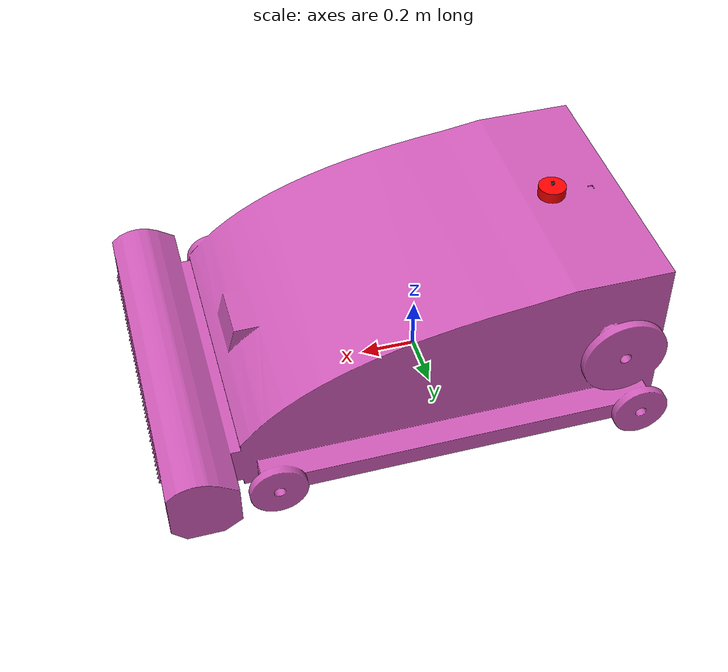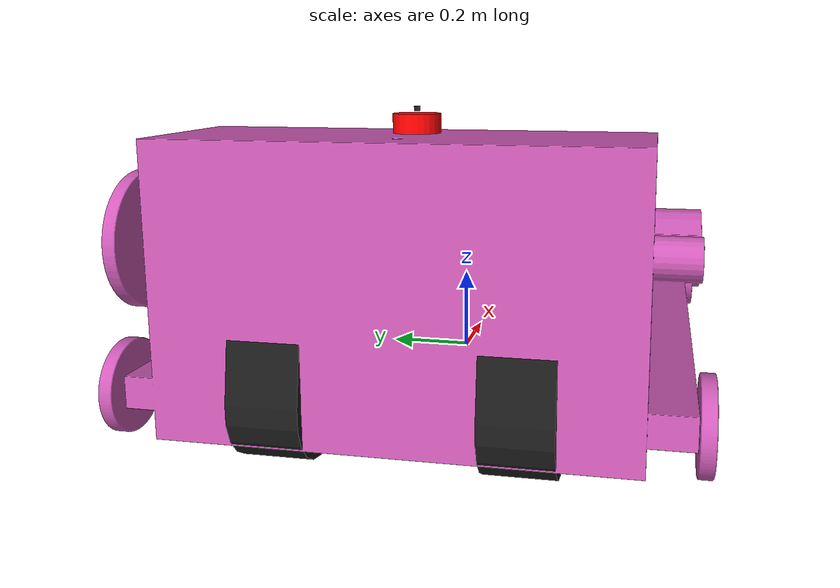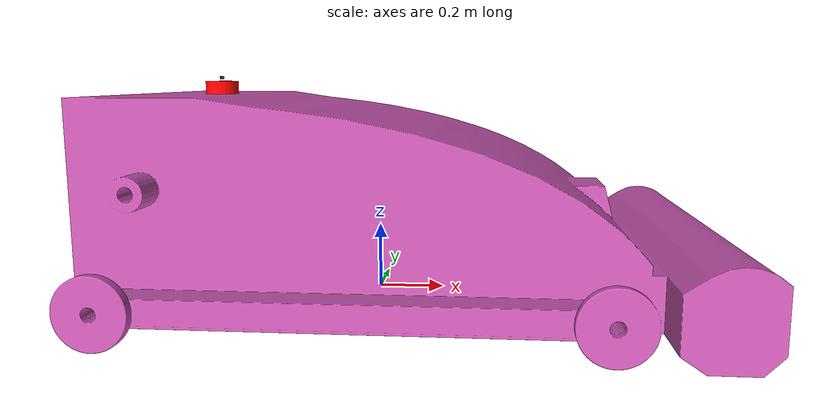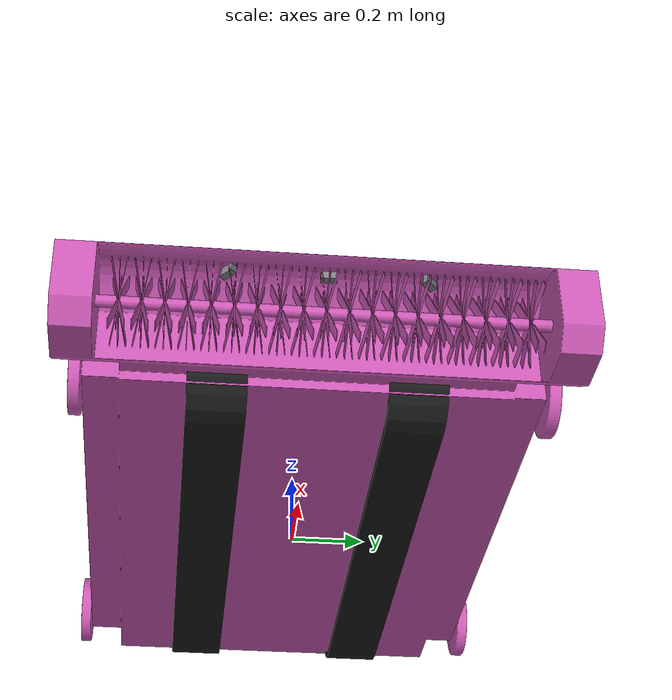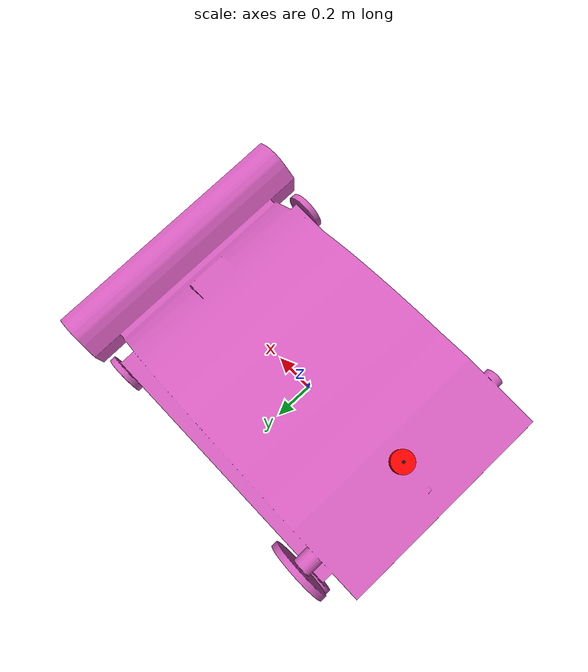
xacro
<?xml version="1.0"?>
<robot xmlns:xacro="http://ros.org/wiki/xacro" >

    <xacro:property name="base_mass" value="13.14"/>
    <xacro:property name="base_x" value="0.50"/>
    <xacro:property name="base_y" value="0.24"/>
    <xacro:property name="base_z" value="0.14"/>

    <xacro:property name="track_offset_y" value="0.25"/>
    <xacro:property name="drive_wheel_radius" value="0.05"/>
    <xacro:property name="drive_wheel_width" value="0.05"/>

    <link name="base_footprint"/>

    <joint name="base_joint" type="fixed">
        <parent link="base_footprint"/>
        <child link="base_link"/>
        <origin xyz="0 0 0" rpy="0 0 0"/>
    </joint>

    <link name="base_link">
        <visual name="base_link">
            <origin xyz="0 0 0"/>
            <geometry>
                <mesh filename="package://mower_bot_description/meshes/Car2.dae" />
            </geometry>
        </visual>
        <collision>
            <geometry>
                <mesh filename="package://mower_bot_description/meshes/Car2.dae" />
            </geometry>
        </collision>
        <inertial>
            <mass value="13.14"/>
            <inertia
                ixx="${(13.14/12) * (0.24*0.24 + 0.14*0.14)}" ixy="0" ixz="0"
                iyy="${(13.14/12) * (0.50*0.50 + 0.14*0.14)}" iyz="0"
                izz="${(13.14/12) * (0.50*0.50 + 0.24*0.24)}"
            />
        </inertial>
    </link>

    <xacro:macro name="drive_wheel" params="prefix location reflect_x reflect_y offset_x">
        <link name="${prefix}_${location}_wheel">
            <collision>
                <geometry>
                    <cylinder radius="${drive_wheel_radius}" length="${drive_wheel_width}"/>
                </geometry>
                <surface>
                    <friction>
                        <ode>
                            <mu>2.0</mu>
                            <mu2>0.5</mu2>
                            <fdir1>1 0 0</fdir1>
                            <slip1>0.0</slip1>
                            <slip2>0.0</slip2>
                        </ode>
                    </friction>
                    <contact>
                        <ode>
                            <kp>10000000.0</kp>
                            <kd>1.0</kd>
                        </ode>
                    </contact>
                </surface>
            </collision>
            <inertial>
                <mass value="2.0"/>
                <inertia ixx="0.01" ixy="0" ixz="0" iyy="0.01" iyz="0" izz="0.01"/>
            </inertial>
        </link>

        <joint name="${prefix}_${location}_wheel_joint" type="continuous">
            <parent link="base_link"/>
            <child link="${prefix}_${location}_wheel"/>
            <origin xyz="${offset_x} ${reflect_y * track_offset_y} -0.001" rpy="-1.5708 0 0"/>
            <axis xyz="0 0 1"/>
        </joint>
    </xacro:macro>

    <xacro:macro name="passive_wheel" params="prefix location reflect_y offset_x">
        <link name="${prefix}_${location}_wheel">
            <collision>
                <geometry>
                    <sphere radius="${drive_wheel_radius}"/>
                </geometry>
                <surface>
                    <friction>
                        <ode>
                            <mu>0.0</mu>
                            <mu2>0.0</mu2>
                            <slip1>1.0</slip1>
                            <slip2>1.0</slip2>
                        </ode>
                    </friction>
                </surface>
            </collision>
            <inertial>
                <mass value="0.5"/>
                <inertia ixx="0.001" ixy="0" ixz="0" iyy="0.001" iyz="0" izz="0.001"/>
            </inertial>
        </link>

        <joint name="${prefix}_${location}_wheel_joint" type="continuous">
            <parent link="base_link"/>
            <child link="${prefix}_${location}_wheel"/>
            <origin xyz="${offset_x} ${reflect_y * track_offset_y} -0.001" rpy="-1.5708 0 0"/>
            <axis xyz="0 0 1"/>
        </joint>
    </xacro:macro>

    <xacro:passive_wheel prefix="front" location="left"  reflect_y="1"  offset_x="0.5"/>
    <xacro:passive_wheel prefix="mid"   location="left"  reflect_y="1"  offset_x="0.0"/>
    <xacro:drive_wheel   prefix="rear"  location="left"  reflect_x="-1" reflect_y="1" offset_x="-0.5"/>

    <xacro:passive_wheel prefix="front" location="right" reflect_y="-1" offset_x="0.5"/>
    <xacro:passive_wheel prefix="mid"   location="right" reflect_y="-1" offset_x="0.0"/>
    <xacro:drive_wheel   prefix="rear"  location="right" reflect_x="-1" reflect_y="-1" offset_x="-0.5"/>

    <xacro:macro name="visual_track" params="prefix reflect">
        <link name="${prefix}_track_visual">
            <visual>
                <geometry>
                     <mesh filename="package://mower_bot_description/meshes/coordi_sys_wheel_left_Link.STL" />
                </geometry>
                <material name="black">
                    <color rgba="0.1 0.1 0.1 1.0"/>
                </material>
            </visual>
            <collision>
                <origin xyz="0 0 0.0"/>
                <geometry>
                    <mesh filename="package://mower_bot_description/meshes/coordi_sys_wheel_left_Link.STL" />
                </geometry>
            </collision>
            <inertial>
                <mass value="2.0"/>
                <inertia ixx="0.01" ixy="0" ixz="0" iyy="0.01" iyz="0" izz="0.01"/>
            </inertial>
        </link>

        <joint name="${prefix}_track_joint" type="fixed">
            <parent link="base_link"/>
            <child link="${prefix}_track_visual"/>
            <origin xyz="0 ${reflect * track_offset_y} -0.03" rpy="0 0 0"/>
        </joint>
    </xacro:macro>

    <xacro:visual_track prefix="left" reflect="1"/>
    <xacro:visual_track prefix="right" reflect="-1"/>

    <link name="lidar_link">
        <visual>
            <geometry>
                <cylinder radius="0.05" length="0.04"/>
            </geometry>
            <material name="red">
                <color rgba="1 0 0 1.0"/>
            </material>
        </visual>
        <collision>
            <geometry>
                <cylinder radius="0.05" length="0.04"/>
            </geometry>
        </collision>
        <inertial>
            <mass value="0.1"/>
            <inertia ixx="0.0001" ixy="0" ixz="0" iyy="0.0001" iyz="0" izz="0.0001"/>
        </inertial>
    </link>

    <joint name="lidar_mount_joint" type="fixed">
        <parent link="base_link"/>
        <child link="lidar_link"/>
        <origin xyz="-0.5 0 0.63" rpy="0 0 0"/>
    </joint>

    <link name="laser_frame">
        <visual>
            <geometry><box size="0.01 0.01 0.01"/></geometry>
            <material name="black"/>
        </visual>
    </link>

    <joint name="laser_joint" type="fixed">
        <parent link="lidar_link"/>
        <child link="laser_frame"/>
        <origin xyz="0 0 0.03" rpy="0 0 0"/> </joint>

    <link name="imu_link"/>
    <joint name="imu_joint" type="fixed">
        <parent link="base_link"/>
        <child link="imu_link"/>
        <origin xyz="0 0 0" rpy="0 0 0"/>
    </joint>

    <link name="camera_link">
        <visual>
            <geometry><box size="0.025 0.09 0.025"/></geometry>
            <material name="grey"><color rgba="0.5 0.5 0.5 1.0"/></material>
        </visual>
        <collision>
            <geometry><box size="0.025 0.09 0.025"/></geometry>
        </collision>
        <inertial>
            <mass value="0.1"/>
            <inertia ixx="0.0001" ixy="0" ixz="0" iyy="0.0001" iyz="0" izz="0.0001"/>
        </inertial>
    </link>

    <joint name="camera_joint" type="fixed">
        <parent link="base_link"/>
        <child link="camera_link"/>
        <origin xyz="0.15 0 0.2" rpy="0 0 0"/>
    </joint>

    <link name="camera_depth_frame"/>
    <joint name="camera_depth_joint" type="fixed">
        <parent link="camera_link"/>
        <child link="camera_depth_frame"/>
        <origin xyz="0 0 0" rpy="-1.57 0 -1.57"/>
    </joint>

    <link name="gps_link">
        <visual>
            <geometry><cylinder radius="0.02" length="0.01"/></geometry>
            <material name="white"><color rgba="1 1 1 1.0"/></material>
        </visual>
        <collision>
            <geometry><cylinder radius="0.02" length="0.01"/></geometry>
        </collision>
        <inertial>
            <mass value="0.05"/>
            <inertia ixx="0.0001" ixy="0" ixz="0" iyy="0.0001" iyz="0" izz="0.0001"/>
        </inertial>
    </link>

    <joint name="gps_joint" type="fixed">
        <parent link="base_link"/>
        <child link="gps_link"/>
        <origin xyz="-0.1 0 0.3" rpy="0 0 0"/>
    </joint>

    <!-- Ultrasonic Sensors -->
    <!-- Center Sonar -->
    <link name="sonar_center">
        <visual><geometry><box size="0.02 0.04 0.02"/></geometry><material name="grey"/></visual>
    </link>
    <joint name="sonar_center_joint" type="fixed">
        <parent link="base_link"/>
        <child link="sonar_center"/>
        <origin xyz="1 0 0.15" rpy="0 0 0"/>
    </joint>

    <!-- Left Sonar -->
    <link name="sonar_left">
        <visual><geometry><box size="0.02 0.04 0.02"/></geometry><material name="grey"/></visual>
    </link>
    <joint name="sonar_left_joint" type="fixed">
        <parent link="base_link"/>
        <child link="sonar_left"/>
        <!-- Pointing 45 degrees left (0.785 rad) -->
        <origin xyz="1 0.24 0.15" rpy="0 0 0.7854"/>
    </joint>

    <!-- Right Sonar -->
    <link name="sonar_right">
        <visual><geometry><box size="0.02 0.04 0.02"/></geometry><material name="grey"/></visual>
    </link>
    <joint name="sonar_right_joint" type="fixed">
        <parent link="base_link"/>
        <child link="sonar_right"/>
        <!-- Pointing 45 degrees right (-0.785 rad) -->
        <origin xyz="1 -0.24 0.15" rpy="0 0 -0.7854"/>
    </joint>

</robot>
